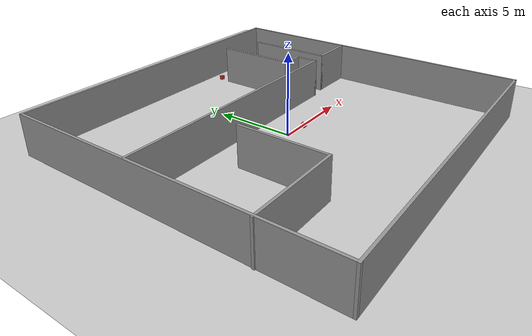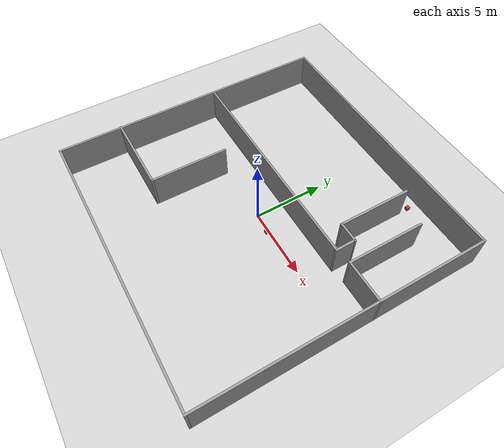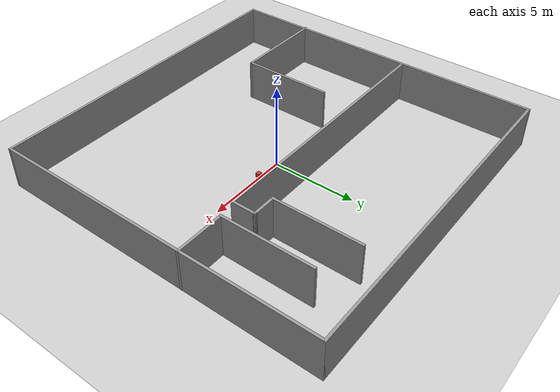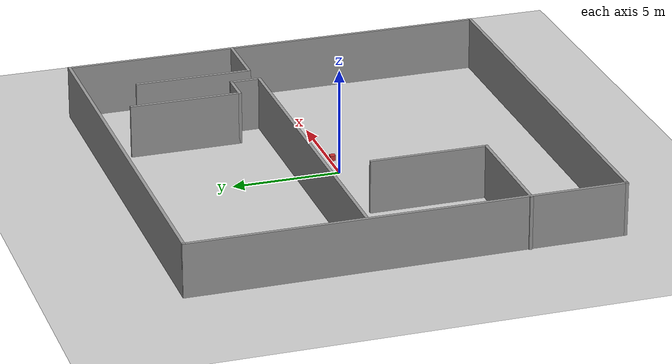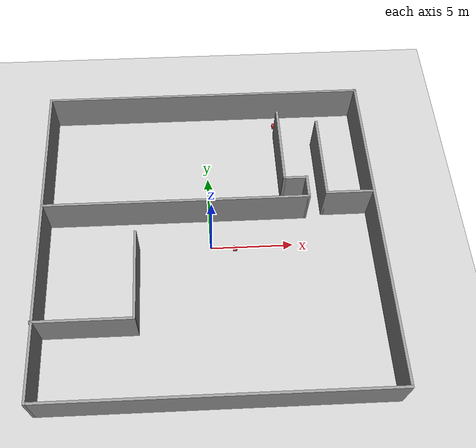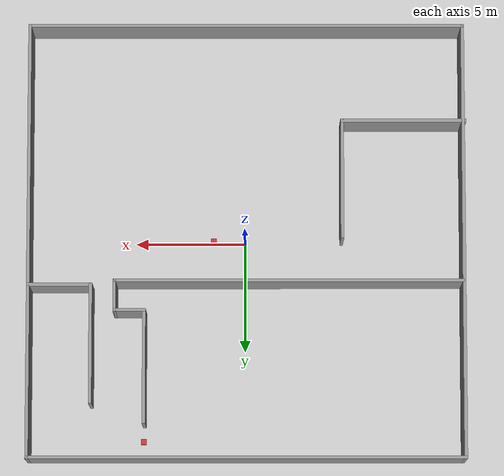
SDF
<sdf version="1.7">
 <world name="maze_world">
  <light name="sun" type="directional">
   <pose>0 0 10 0 -0 0</pose>
   <diffuse>0.8 0.8 0.8 1</diffuse>
   <specular>0.2 0.2 0.2 1</specular>
   <attenuation>
    <range>1000</range>
    <constant>0.9</constant>
    <linear>0.01</linear>
    <quadratic>0.001</quadratic>
   </attenuation>
   <direction>-0.5 0.1 -0.9</direction>
   <spot><inner_angle>0</inner_angle><outer_angle>0</outer_angle><falloff>0</falloff></spot>
  </light>
  <model name="ground_plane">
   <static>1</static>
   <link name="link">
    <collision name="collision">
     <geometry><plane><normal>0 0 1</normal><size>100 100</size></plane></geometry>
     <surface><friction><ode><mu>100</mu><mu2>50</mu2></ode></friction></surface>
    </collision>
    <visual name="visual">
     <cast_shadows>0</cast_shadows>
     <geometry><plane><normal>0 0 1</normal><size>100 100</size></plane></geometry>
     <material>
      <script><uri>file://media/materials/scripts/gazebo.material</uri><name>Gazebo/Grey</name></script>
     </material>
    </visual>
   </link>
  </model>
  <model name="maze">
   <pose>-0.078283 0.098984 0 0 -0 0</pose>
   <link name="Wall_0">
    <collision name="Wall_0_Collision">
     <geometry><box><size>20 0.15 2.5</size></box></geometry>
     <pose>0 0 1.25 0 -0 0</pose>
    </collision>
    <visual name="Wall_0_Visual">
     <pose>0 0 1.25 0 -0 0</pose>
     <geometry><box><size>20 0.15 2.5</size></box></geometry>
     <material>
      <script><uri>file://media/materials/scripts/gazebo.material</uri><name>Gazebo/Grey</name></script>
      <ambient>1 1 1 1</ambient>
     </material>
    </visual>
    <pose>0.030536 9.925 0 0 -0 0</pose>
   </link>
   <link name="Wall_1">
    <collision name="Wall_1_Collision">
     <geometry><box><size>20 0.15 2.5</size></box></geometry>
     <pose>0 0 1.25 0 -0 0</pose>
    </collision>
    <visual name="Wall_1_Visual">
     <pose>0 0 1.25 0 -0 0</pose>
     <geometry><box><size>20 0.15 2.5</size></box></geometry>
     <material>
      <script><uri>file://media/materials/scripts/gazebo.material</uri><name>Gazebo/Grey</name></script>
      <ambient>1 1 1 1</ambient>
     </material>
    </visual>
    <pose>9.95554 0 0 0 0 -1.5708</pose>
   </link>
   <link name="Wall_2">
    <collision name="Wall_2_Collision">
     <geometry><box><size>20 0.15 2.5</size></box></geometry>
     <pose>0 0 1.25 0 -0 0</pose>
    </collision>
    <visual name="Wall_2_Visual">
     <pose>0 0 1.25 0 -0 0</pose>
     <geometry><box><size>20 0.15 2.5</size></box></geometry>
     <material>
      <script><uri>file://media/materials/scripts/gazebo.material</uri><name>Gazebo/Grey</name></script>
      <ambient>1 1 1 1</ambient>
     </material>
    </visual>
    <pose>0.030536 -9.925 0 0 -0 3.14159</pose>
   </link>
   <link name="Wall_24">
    <collision name="Wall_24_Collision">
     <geometry><box><size>1.5 0.15 2.5</size></box></geometry>
     <pose>0 0 1.25 0 -0 0</pose>
    </collision>
    <visual name="Wall_24_Visual">
     <pose>0 0 1.25 0 -0 0</pose>
     <geometry><box><size>1.5 0.15 2.5</size></box></geometry>
     <material>
      <script><uri>file://media/materials/scripts/gazebo.material</uri><name>Gazebo/Grey</name></script>
      <ambient>1 1 1 1</ambient>
     </material>
    </visual>
    <pose>5.35089 3.21906 0 0 -0 3.14159</pose>
   </link>
   <link name="Wall_25">
    <collision name="Wall_25_Collision">
     <geometry><box><size>5.25 0.15 2.5</size></box></geometry>
     <pose>0 0 1.25 0 -0 0</pose>
    </collision>
    <visual name="Wall_25_Visual">
     <pose>0 0 1.25 0 -0 0</pose>
     <geometry><box><size>5.25 0.15 2.5</size></box></geometry>
     <material>
      <script><uri>file://media/materials/scripts/gazebo.material</uri><name>Gazebo/Grey</name></script>
      <ambient>1 1 1 1</ambient>
     </material>
    </visual>
    <pose>4.67589 5.76906 0 0 -0 1.5708</pose>
   </link>
   <link name="Wall_27">
    <collision name="Wall_27_Collision">
     <geometry><box><size>5.5 0.15 2.5</size></box></geometry>
     <pose>0 0 1.25 0 -0 0</pose>
    </collision>
    <visual name="Wall_27_Visual">
     <pose>0 0 1.25 0 -0 0</pose>
     <geometry><box><size>5.5 0.15 2.5</size></box></geometry>
     <material>
      <script><uri>file://media/materials/scripts/gazebo.material</uri><name>Gazebo/Grey</name></script>
      <ambient>1 1 1 1</ambient>
     </material>
    </visual>
    <pose>7.10914 4.73454 0 0 0 -1.5708</pose>
   </link>
   <link name="Wall_28">
    <collision name="Wall_28_Collision">
     <geometry><box><size>3 0.15 2.5</size></box></geometry>
     <pose>0 0 1.25 0 -0 0</pose>
    </collision>
    <visual name="Wall_28_Visual">
     <pose>0 0 1.25 0 -0 0</pose>
     <geometry><box><size>3 0.15 2.5</size></box></geometry>
     <material>
      <script><uri>file://media/materials/scripts/gazebo.material</uri><name>Gazebo/Grey</name></script>
      <ambient>1 1 1 1</ambient>
     </material>
    </visual>
    <pose>8.53414 2.05954 0 0 -0 0</pose>
   </link>
   <link name="Wall_3">
    <collision name="Wall_3_Collision">
     <geometry><box><size>20 0.15 2.5</size></box></geometry>
     <pose>0 0 1.25 0 -0 0</pose>
    </collision>
    <visual name="Wall_3_Visual">
     <pose>0 0 1.25 0 -0 0</pose>
     <geometry><box><size>20 0.15 2.5</size></box></geometry>
     <material>
      <script><uri>file://media/materials/scripts/gazebo.material</uri><name>Gazebo/Grey</name></script>
      <ambient>1 1 1 1</ambient>
     </material>
    </visual>
    <pose>-9.89446 0 0 0 -0 1.5708</pose>
   </link>
   <link name="Wall_30">
    <collision name="Wall_30_Collision">
     <geometry><box><size>5.5 0.15 2.5</size></box></geometry>
     <pose>0 0 1.25 0 -0 0</pose>
    </collision>
    <visual name="Wall_30_Visual">
     <pose>0 0 1.25 0 -0 0</pose>
     <geometry><box><size>5.5 0.15 2.5</size></box></geometry>
     <material>
      <script><uri>file://media/materials/scripts/gazebo.material</uri><name>Gazebo/Grey</name></script>
      <ambient>1 1 1 1</ambient>
     </material>
    </visual>
    <pose>-4.35914 -2.82889 0 0 0 -1.5708</pose>
   </link>
   <link name="Wall_31">
    <collision name="Wall_31_Collision">
     <geometry><box><size>5.75 0.15 2.5</size></box></geometry>
     <pose>0 0 1.25 0 -0 0</pose>
    </collision>
    <visual name="Wall_31_Visual">
     <pose>0 0 1.25 0 -0 0</pose>
     <geometry><box><size>5.75 0.15 2.5</size></box></geometry>
     <material>
      <script><uri>file://media/materials/scripts/gazebo.material</uri><name>Gazebo/Grey</name></script>
      <ambient>1 1 1 1</ambient>
     </material>
    </visual>
    <pose>-7.15914 -5.50389 0 0 -0 3.14159</pose>
   </link>
   <link name="Wall_5">
    <collision name="Wall_5_Collision">
     <geometry><box><size>16 0.15 2.5</size></box></geometry>
     <pose>0 0 1.25 0 -0 0</pose>
    </collision>
    <visual name="Wall_5_Visual">
     <pose>0 0 1.25 0 -0 0</pose>
     <geometry><box><size>16 0.15 2.5</size></box></geometry>
     <material>
      <script><uri>file://media/materials/scripts/gazebo.material</uri><name>Gazebo/Grey</name></script>
      <ambient>1 1 1 1</ambient>
     </material>
    </visual>
    <pose>-1.89911 1.86906 0 0 -0 0</pose>
   </link>
   <link name="Wall_6">
    <collision name="Wall_6_Collision">
     <geometry><box><size>1.5 0.15 2.5</size></box></geometry>
     <pose>0 0 1.25 0 -0 0</pose>
    </collision>
    <visual name="Wall_6_Visual">
     <pose>0 0 1.25 0 -0 0</pose>
     <geometry><box><size>1.5 0.15 2.5</size></box></geometry>
     <material>
      <script><uri>file://media/materials/scripts/gazebo.material</uri><name>Gazebo/Grey</name></script>
      <ambient>1 1 1 1</ambient>
     </material>
    </visual>
    <pose>6.02589 2.54406 0 0 -0 1.5708</pose>
   </link>
   <link name="Wall_8">
    <collision name="Wall_8_Collision">
     <geometry><box><size>0.15 0.15 2.5</size></box></geometry>
     <pose>0 0 1.25 0 -0 0</pose>
    </collision>
    <visual name="Wall_8_Visual">
     <pose>0 0 1.25 0 -0 0</pose>
     <geometry><box><size>0.15 0.15 2.5</size></box></geometry>
     <material>
      <script><uri>file://media/materials/scripts/gazebo.material</uri><name>Gazebo/Grey</name></script>
      <ambient>1 1 1 1</ambient>
     </material>
    </visual>
    <pose>6.02589 3.21906 0 0 -0 0</pose>
   </link>
   <static>1</static>
  </model>
  <model name="manipulation_test_box_2">
   <pose>4.64 9.15 0.125 0 -0 0</pose>
   <static>0</static>
   <link name="link">
    <collision name="collision">
     <geometry><box><size>0.25 0.25 0.25</size></box></geometry>
     <surface><friction><ode><mu>0.1</mu><mu2>0.1</mu2></ode></friction></surface>
    </collision>
    <visual name="visual">
     <geometry><box><size>0.25 0.25 0.25</size></box></geometry>
     <material>
      <ambient>0.8 0.2 0.2 1</ambient>
      <diffuse>0.8 0.2 0.2 1</diffuse>
      <specular>0.1 0.1 0.1 1</specular>
     </material>
    </visual>
    <inertial>
     <mass>0.2</mass>
     <inertia><ixx>0.02</ixx><iyy>0.02</iyy><izz>0.02</izz><ixy>0</ixy><ixz>0</ixz><iyz>0</iyz></inertia>
    </inertial>
   </link>
  </model>
  <model name="detection_test_box_2">
   <pose>1.45 -0.139 0.125 0 -0 0</pose>
   <static>0</static>
   <link name="link">
    <collision name="collision">
     <geometry><box><size>0.25 0.25 0.25</size></box></geometry>
     <surface><friction><ode><mu>0.1</mu><mu2>0.1</mu2></ode></friction></surface>
    </collision>
    <visual name="visual">
     <geometry><box><size>0.25 0.25 0.25</size></box></geometry>
     <material>
      <ambient>0.8 0.2 0.2 1</ambient>
      <diffuse>0.8 0.2 0.2 1</diffuse>
      <specular>0.1 0.1 0.1 1</specular>
     </material>
    </visual>
    <inertial>
     <mass>0.2</mass>
     <inertia><ixx>0.02</ixx><iyy>0.02</iyy><izz>0.02</izz><ixy>0</ixy><ixz>0</ixz><iyz>0</iyz></inertia>
    </inertial>
   </link>
  </model>
  <gravity>0 0 -9.8</gravity>
  <magnetic_field>6e-06 2.3e-05 -4.2e-05</magnetic_field>
  <atmosphere type="adiabatic"/>
  <physics type="ode">
   <max_step_size>0.001</max_step_size>
   <real_time_factor>1</real_time_factor>
   <real_time_update_rate>1000</real_time_update_rate>
  </physics>
  <scene><ambient>0.4 0.4 0.4 1</ambient><background>0.7 0.7 0.7 1</background><shadows>1</shadows></scene>
  <audio><device>default</device></audio>
  <spherical_coordinates>
   <surface_model>EARTH_WGS84</surface_model>
   <latitude_deg>0</latitude_deg>
   <longitude_deg>0</longitude_deg>
   <elevation>0</elevation>
   <heading_deg>0</heading_deg>
  </spherical_coordinates>
 </world>
</sdf>
